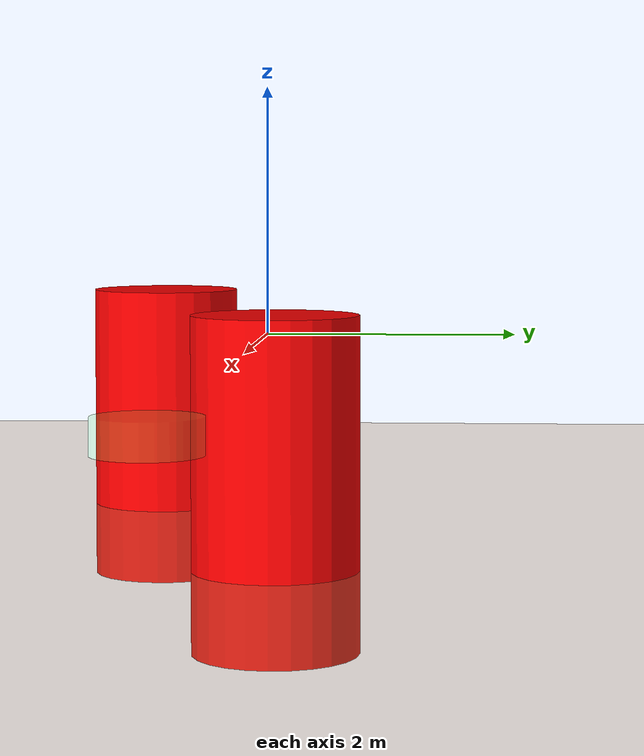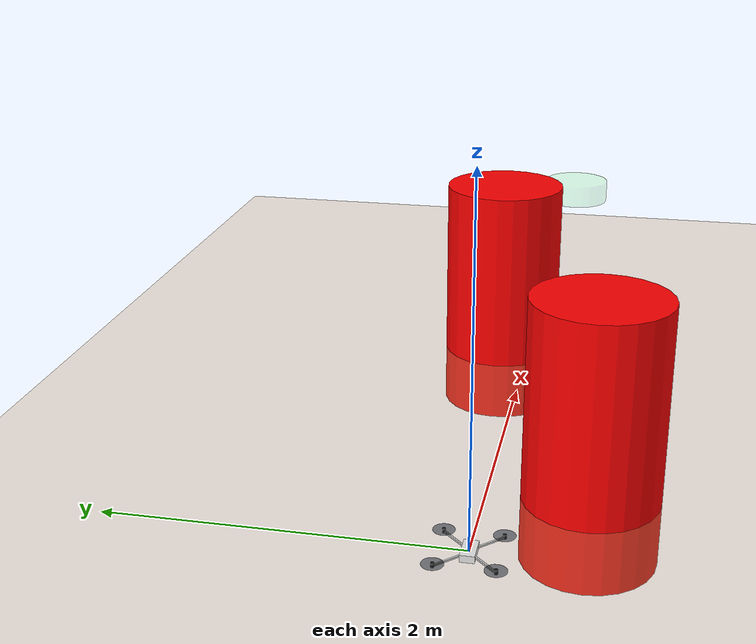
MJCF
<!--
Quadcopter with x configuration.
Front: Along body X-axis
-->

<mujoco model="mujoco_quad">
    <!--Note how inertiafromgeom is false, we must specify mass and inertia properties later!-->
    <compiler angle="radian" inertiafromgeom="false" coordinate="local"/>

    <!--Was originally viscosity=1e-5, integrator=RK4-->
    <option	timestep="0.1" gravity="0 0 -9.81" density="1" viscosity="1e-5" integrator="RK4"/>

    <!-- for rendering at 720p -->
    <visual>
        <global offheight="720" offwidth="1280"/>
    </visual>

    <default>
        <joint armature="1" damping="1" limited="true"/>
        <geom conaffinity="0" condim="3" density="5.0" friction="1 0.5 0.5" margin="0.01" rgba="0.8 0.6 0.4 1"/>
    </default>

    <default>
        <joint armature="1" damping="1" limited="true"/>
        <geom conaffinity="0" condim="3" density="5.0" friction="1 0.5 0.5" margin="0.01" rgba="0.8 0.6 0.4 1"/>
    </default>

    <asset>
        <texture builtin="gradient" type="skybox" height="100" width="100" rgb1="1 1 1" rgb2="0 0 0"/>
        <texture name="texgeom" builtin="flat" height="1278" mark="cross" markrgb="1 1 1" random="0.01" rgb1="0.8 0.6 0.4" rgb2="0.8 0.6 0.4" type="cube" width="127"/>
        <texture name="texplane" builtin="checker" height="100" width="100" rgb1="0 0 0" rgb2="0.8 0.8 0.8" type="2d"/>
        <material name="MatPlane" reflectance="0.5" shininess="1" specular="1" texrepeat="60 60" texture="texplane"/>
        <material name="geom" texture="texgeom" texuniform="true"/>
		<texture type="skybox" builtin="gradient" rgb1="0.3 0.5 0.7" rgb2="0 0 0" width="512" height="3072"/>
		<texture type="2d" name="groundplane" builtin="checker" mark="edge" rgb1="0.2 0.3 0.4" rgb2="0.1 0.2 0.3"
		markrgb="0.8 0.8 0.8" width="300" height="300"/>
		<material name="groundplane" texture="groundplane" texuniform="true" texrepeat="5 5" reflectance="0.2"/>

    </asset>

    <worldbody>
		<light pos="0 0 1.5" dir="0 0 -1" directional="true"/>
		<geom name="floor" pos="0 0 -1" size="0 0 0.05" type="plane" material="groundplane"/>

        <body name="core" pos="0 0 0">
            <inertial pos="0 0 0" mass="1.2" diaginertia="0.0123 0.0123 0.0224"/>
            <joint name="root" type="free" damping="0" armature="0" pos="0 0 0" limited="false"/>
            <camera name="track" mode="trackcom" pos="0 -3 1.0" xyaxes="1 0 0 0 0 1"/>
			<camera euler="0 0 0" fovy="40" name="rgb" pos="0 0 5"></camera>
            <geom name="core_geom" type="box" pos="0 0 0" quat="1 0 0 0" size=".08 .04 .02" rgba=".9 .9 .9 1" mass="0"/>

            <geom name="arm_front_left" type="box" pos=".08 .07 0" size=".13 .005 .005" quat=".924 0 0 .383" rgba=".9 .9 .9 1" mass="0"/>
            <geom name="arm_front_right" type="box" pos=".08 -.07 0" size=".13 .005 .005" quat=".383 0 0 .924" rgba=".9 .9 .9 1" mass="0"/>
            <geom name="arm_back_right" type="box" pos="-.08 -.07 0" size=".13 .005 .005" quat="-.383 0 0 .924" rgba=".9 .9 .9 1" mass="0"/>
            <geom name="arm_back_left" type="box" pos="-.08 .07 0" size=".13 .005 .005" quat=".924 0 0 -.383" rgba=".9 .9 .9 1" mass="0"/>

            <site name="motor_front_left" type="cylinder" pos=".17 .16 .005" size=".01 .012" quat="1 0 0 0" rgba=".1 .1 .1 1"/>
            <site name="motor_front_right" type="cylinder" pos=".17 -.16 .005" size=".01 .012" quat="1 0 0 0" rgba=".1 .1 .1 1"/>
            <site name="motor_back_right" type="cylinder" pos="-.17 -.16 .005" size=".01 .012" quat="1 0 0 0" rgba=".1 .1 .1 1"/>
            <site name="motor_back_left" type="cylinder" pos="-.17  .16 .005" size=".01 .012" quat="1 0 0 0" rgba=".1 .1 .1 1"/>

            <geom name="thruster_front_left" type="cylinder" pos=".17 .16 .01" size=".06 .001" quat="1 0 0 0" rgba=".1 .1 .1 0.6" mass="0"/>
            <geom name="thruster_front_right" type="cylinder" pos=".17 -.16 .01" size=".06 .001" quat="1 0 0 0" rgba=".1 .1 .1 0.6" mass="0"/>
            <geom name="thruster_back_right" type="cylinder" pos="-.17 -.16 .01" size=".06 .001" quat="1 0 0 0" rgba=".1 .1 .1 0.6" mass="0"/>
            <geom name="thruster_back_left" type="cylinder" pos="-.17 .16 .01" size=".06 .001" quat="1 0 0 0" rgba=".1 .1 .1 0.6" mass="0"/>

        </body>

        <geom name="tall_cylinder_1" type="cylinder" pos="2.5 -0.5 -0.5" size="0.5 1" mass="0" contype="0" conaffinity="0" rgba="1 0 0 1"/>
		<geom name="tall_cylinder_2" type="cylinder" pos="5.2  0.5 -0.5" size="0.5 1" mass="0" contype="0" conaffinity="0" rgba="1 0 0 1"/>
		<geom name="target" type="cylinder" pos="7 0 0" size="0.3 0.1" mass="0" contype="0" conaffinity="0" rgba="0.4 1 0.4 0.2"/>
    </worldbody>

    <actuator>
        <motor ctrllimited="true" ctrlrange="0.060525 9.206525000000001" gear="0 0 1 0 0 -0.01516728624535316" site="motor_front_left"/>
        <motor ctrllimited="true" ctrlrange="0.060525 9.206525000000001" gear="0 0 1 0 0 0.01516728624535316" site="motor_front_right"/>
        <motor ctrllimited="true" ctrlrange="0.060525 9.206525000000001" gear="0 0 1 0 0 -0.01516728624535316" site="motor_back_right"/>
        <motor ctrllimited="true" ctrlrange="0.060525 9.206525000000001" gear="0 0 1 0 0 0.01516728624535316" site="motor_back_left"/>
    </actuator>

</mujoco>
